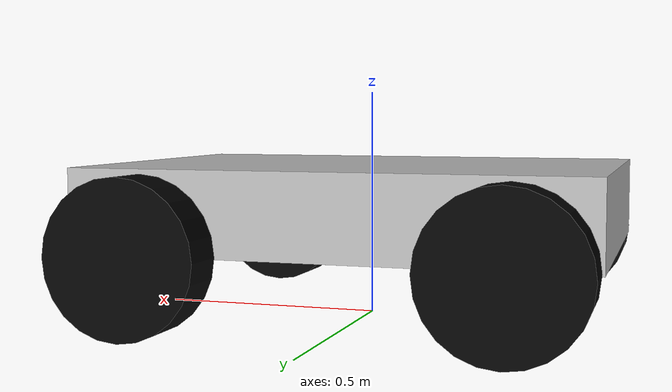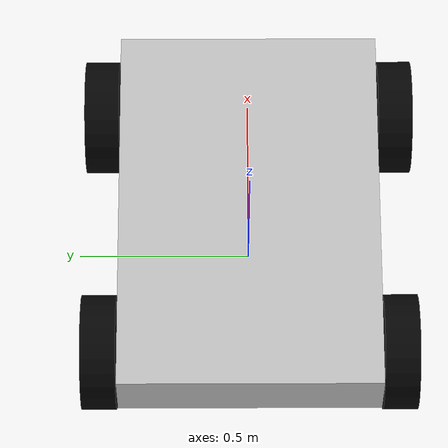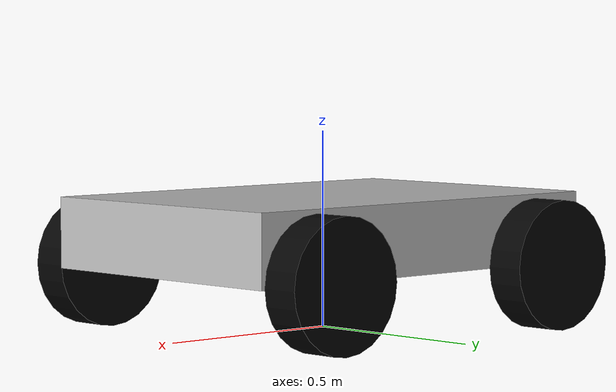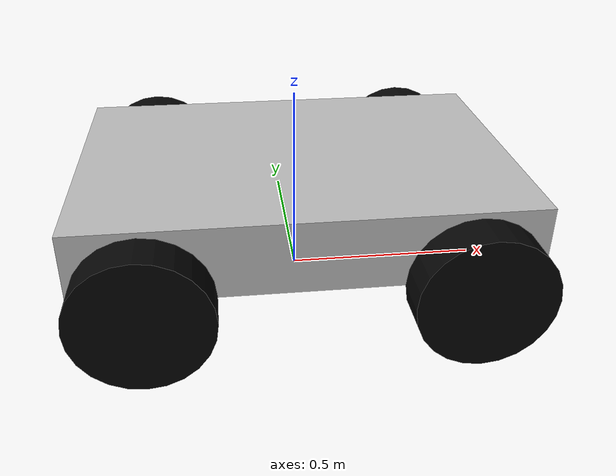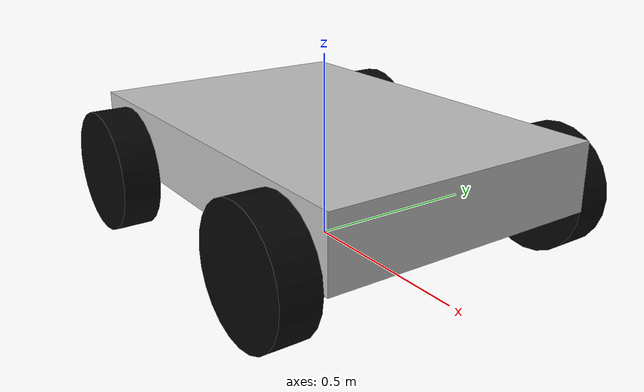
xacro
<?xml version="1.0"?>
<robot name="agrobot" xmlns:xacro="http://www.ros.org/wiki/xacro">

  <link name="base_link">
    <visual>
      <origin xyz="0 0 0.25" rpy="0 0 0"/>
      <geometry>
        <box size="1.10 0.75 0.18"/>
      </geometry>
      <material name="silver">
        <color rgba="0.75 0.75 0.75 1"/>
      </material>
    </visual>

    <collision>
      <origin xyz="0 0 0.25" rpy="0 0 0"/>
      <geometry>
        <box size="1.10 0.75 0.18"/>
      </geometry>
    </collision>

    <inertial>
      <origin xyz="0 0 0.25"/>
      <mass value="34"/>
      <inertia ixx="1.9" ixy="0" ixz="0" iyy="3.8" iyz="0" izz="4.8"/>
    </inertial>
  </link>

  <xacro:macro name="wheel" params="name x y">
    <link name="${name}">
      <visual>
        <origin xyz="0 0 0" rpy="1.5708 0 0"/>
        <geometry>
          <cylinder radius="0.165" length="0.10"/>
        </geometry>
        <material name="black">
          <color rgba="0.02 0.02 0.02 1"/>
        </material>
      </visual>

      <collision>
        <origin xyz="0 0 0" rpy="1.5708 0 0"/>
        <geometry>
          <cylinder radius="0.165" length="0.10"/>
        </geometry>
      </collision>

      <inertial>
        <mass value="3"/>
        <inertia ixx="0.03" ixy="0" ixz="0" iyy="0.03" iyz="0" izz="0.03"/>
      </inertial>
    </link>

    <joint name="${name}_joint" type="continuous">
      <parent link="base_link"/>
      <child link="${name}"/>
      <origin xyz="${x} ${y} 0.165" rpy="0 0 0"/>
      <axis xyz="0 1 0"/>
    </joint>
  </xacro:macro>

  <xacro:wheel name="front_left_wheel"  x="0.38"  y="0.43"/>
  <xacro:wheel name="rear_left_wheel"   x="-0.38" y="0.43"/>
  <xacro:wheel name="front_right_wheel" x="0.38"  y="-0.43"/>
  <xacro:wheel name="rear_right_wheel"  x="-0.38" y="-0.43"/>

</robot>
